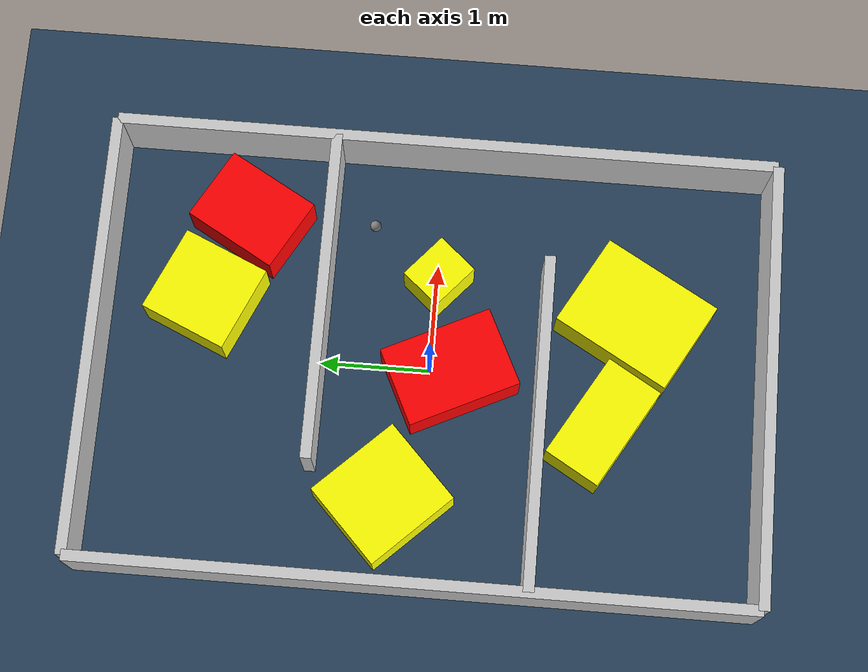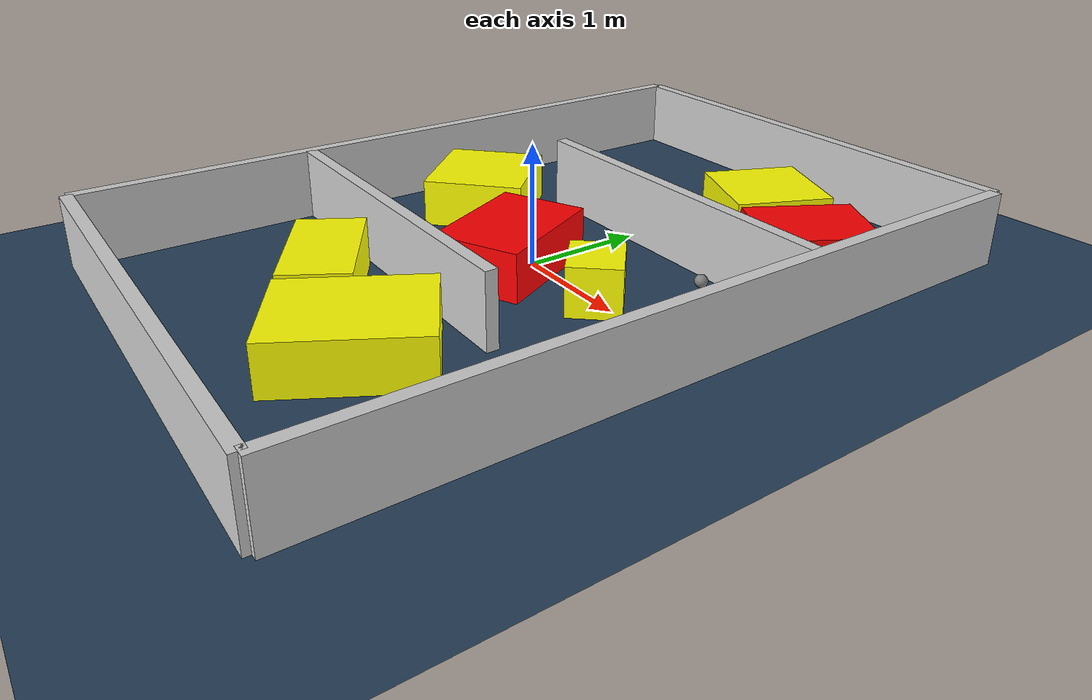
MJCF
<?xml version="1.0" ?>
<mujoco model="generated_environment">
  <option timestep="0.01" integrator="RK4" cone="elliptic"/>
  <default>
    <geom density="1"/>
  </default>
  <asset>
    <texture builtin="gradient" height="3072" rgb1="0.3 0.5 0.7" rgb2="0 0 0" type="skybox" width="512"/>
    <texture builtin="checker" height="300" mark="edge" markrgb="0.8 0.8 0.8" name="groundplane" rgb1="0.2 0.3 0.4" rgb2="0.1 0.2 0.3" type="2d" width="300"/>
    <material name="groundplane" reflectance="0.2" texrepeat="5 5" texture="groundplane" texuniform="true"/>
    <material name="robot" rgba="0.0 1.0 0.0 1"/>
  </asset>
  <worldbody>
    <light dir="0 0 -1" directional="true" pos="0 0 1.5"/>
    <geom condim="4" friction="1.0 0.005 0.001" material="groundplane" name="floor" size="0 0 0.05" type="plane"/>
    <body name="walls">
      <geom name="wall_1" condim="4" pos="-2.0 0.0 0.3" rgba="0.800000011920929 0.800000011920929 0.800000011920929 1.0" size="0.05 3.0 0.3" type="box"/>
      <geom name="wall_2" condim="4" pos="2.0 0.0 0.3" rgba="0.800000011920929 0.800000011920929 0.800000011920929 1.0" size="0.05 3.0 0.3" type="box"/>
      <geom name="wall_3" condim="4" pos="0.0 -3.0 0.3" rgba="0.800000011920929 0.800000011920929 0.800000011920929 1.0" size="2.0 0.05 0.3" type="box"/>
      <geom name="wall_4" condim="4" pos="0.0 3.0 0.3" rgba="0.800000011920929 0.800000011920929 0.800000011920929 1.0" size="2.0 0.05 0.3" type="box"/>
      <geom name="wall_5" condim="4" pos="-0.5 -1.0 0.3" rgba="0.800000011920929 0.800000011920929 0.800000011920929 1.0" size="1.5 0.05 0.3" type="box"/>
      <geom name="wall_6" condim="4" pos="0.5 1.0 0.3" rgba="0.800000011920929 0.800000011920929 0.800000011920929 1.0" size="1.5 0.05 0.3" type="box"/>
    </body>
    <body name="robot">
      <joint name="joint_x" type="slide" pos="0 0 0" axis="1 0 0"/>
      <joint name="joint_y" type="slide" pos="0 0 0" axis="0 1 0"/>
      <geom name="robot" type="sphere" pos="1.2855989276551512 0.5986499330111692 0.2" size="0.05" mass="5." friction="1.0 0.005 0.0001" condim="4"/>
      <site name="sensor_ball"/>
    </body>
    <body name="obstacle_1_movable">
      <geom name="obstacle_1_movable" condim="4" pos="0.5864575235524847 -1.8125490595103466 0.2" euler="0 0 60.33914151836783" friction="1.0 0.005 0.001" rgba="1 1 0 1" size="0.5724313466707135 0.4438688093858252 0.2" type="box" mass="0.1"/>
      <joint type="free"/>
    </body>
    <body name="obstacle_2_movable">
      <geom name="obstacle_2_movable" condim="4" pos="-0.4275157599625874 -1.5687134100840914 0.2" euler="0 0 59.515022072298635" friction="1.0 0.005 0.001" rgba="1 1 0 1" size="0.27279813267931297 0.5083572282528914 0.2" type="box" mass="0.1"/>
      <joint type="free"/>
    </body>
    <body name="obstacle_3_movable">
      <geom name="obstacle_3_movable" condim="4" pos="0.8404497377995761 -0.01819598907728537 0.2" euler="0 0 48.89615707291538" friction="1.0 0.005 0.001" rgba="1 1 0 1" size="0.2091971146587088 0.24027987627316347 0.2" type="box" mass="0.1"/>
      <joint type="free"/>
    </body>
    <body name="obstacle_4_static">
      <geom name="obstacle_4_static" condim="4" pos="-0.035319525281066966 -0.18254123568457503 0.2" euler="0 0 295.73958954292186" friction="1.0 0.005 0.001" rgba="1 0 0 1" size="0.5234838261874355 0.36781082988598557 0.2" type="box"/>
    </body>
    <body name="obstacle_5_movable">
      <geom name="obstacle_5_movable" condim="4" pos="0.5118641704683118 2.0700558164683196 0.2" euler="0 0 336.1720071654836" friction="1.0 0.005 0.001" rgba="1 1 0 1" size="0.4038921781726088 0.41149782314177796 0.2" type="box" mass="0.1"/>
      <joint type="free"/>
    </body>
    <body name="obstacle_6_static">
      <geom name="obstacle_6_static" condim="4" pos="1.293029592526782 1.7253958136081415 0.2" euler="0 0 330.41146888056306" friction="1.0 0.005 0.001" rgba="1 0 0 1" size="0.35114653492818787 0.448262952947062 0.2" type="box"/>
    </body>
    <body name="obstacle_7_movable">
      <geom name="obstacle_7_movable" condim="4" pos="-1.218852594860553 0.3176026199470088 0.2" euler="0 0 313.7055373627207" friction="1.0 0.005 0.001" rgba="1 1 0 1" size="0.4593914651076168 0.4263282698662315 0.2" type="box" mass="0.1"/>
      <joint type="free"/>
    </body>
  </worldbody>
  <actuator>
    <motor name="actuator_x" joint="joint_x" gear="1" ctrlrange="-1 1"/>
    <motor name="actuator_y" joint="joint_y" gear="1" ctrlrange="-1 1"/>
  </actuator>
</mujoco>
